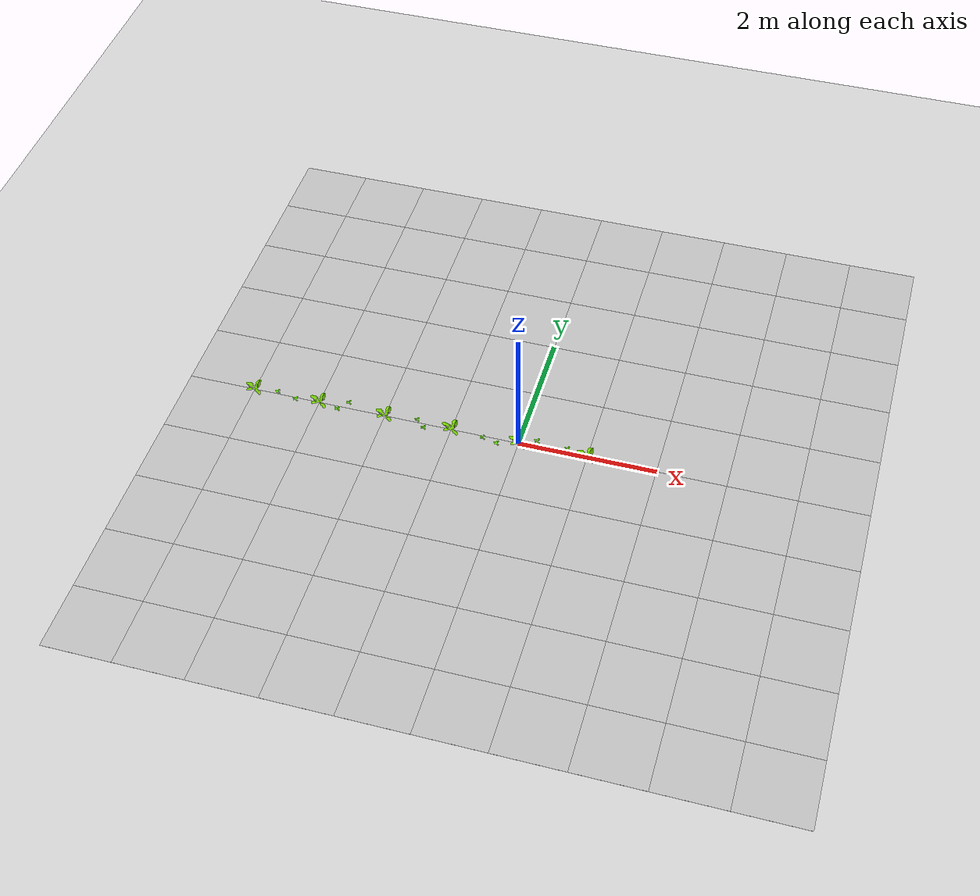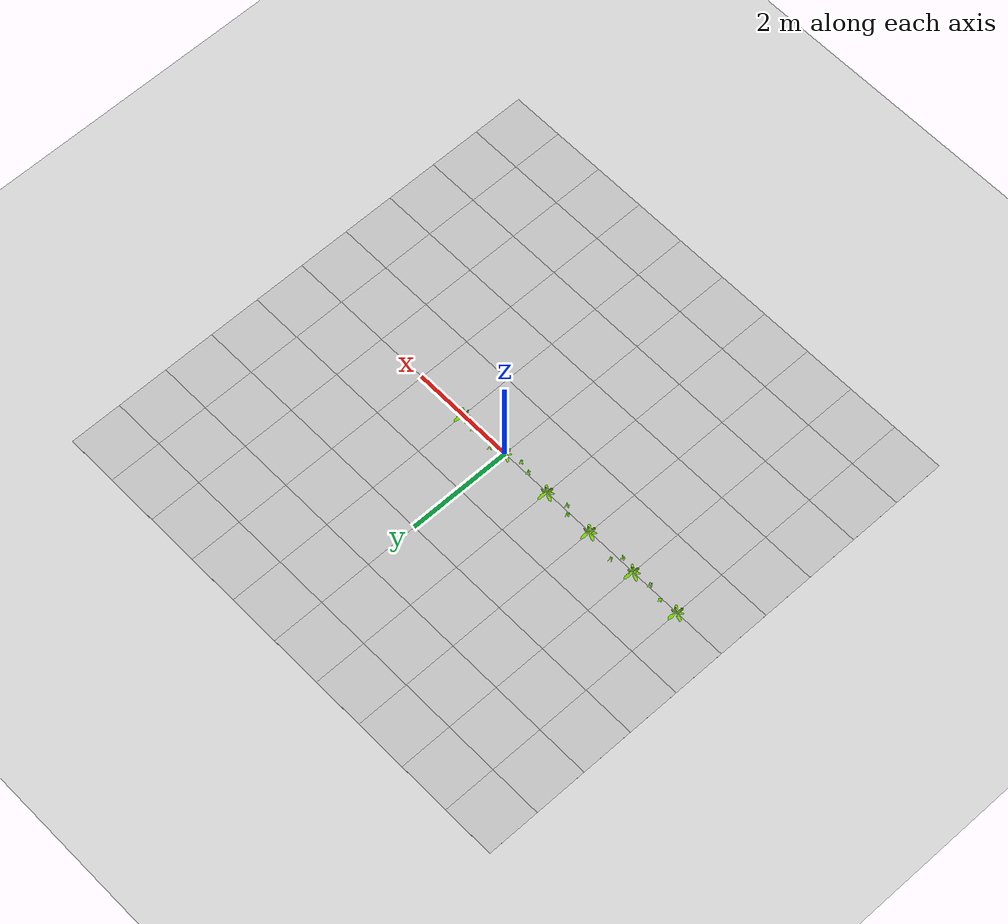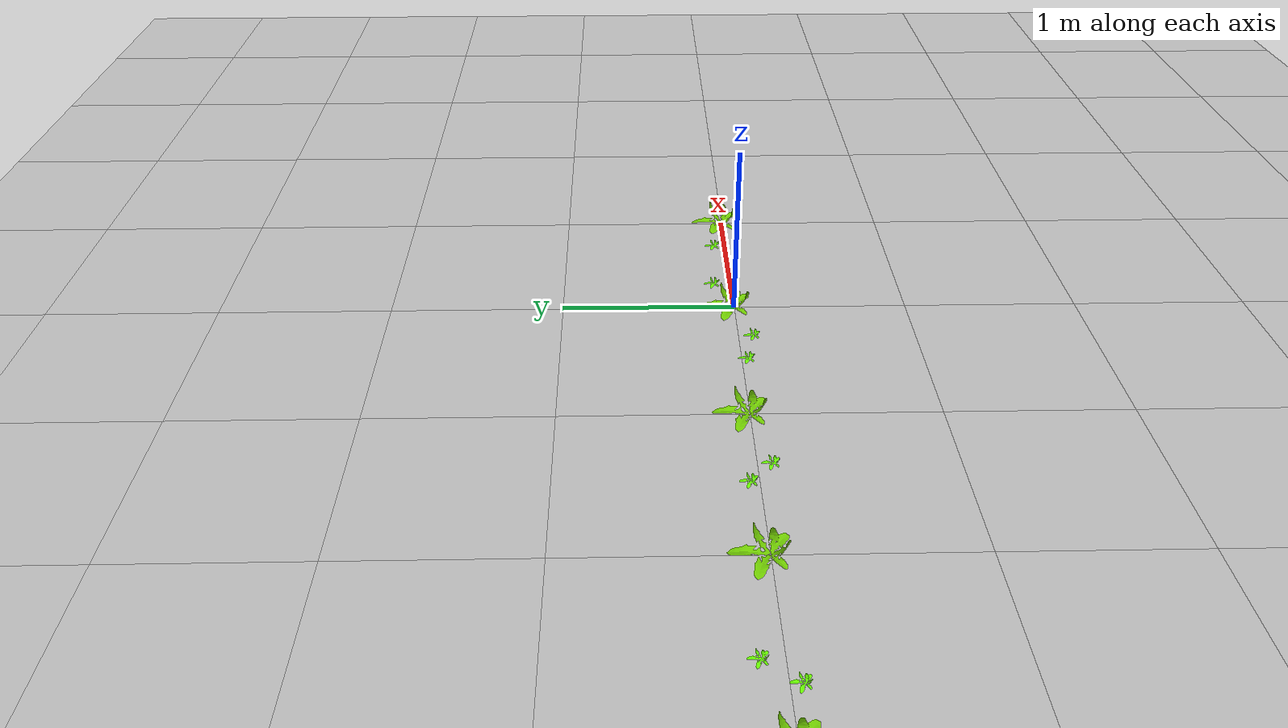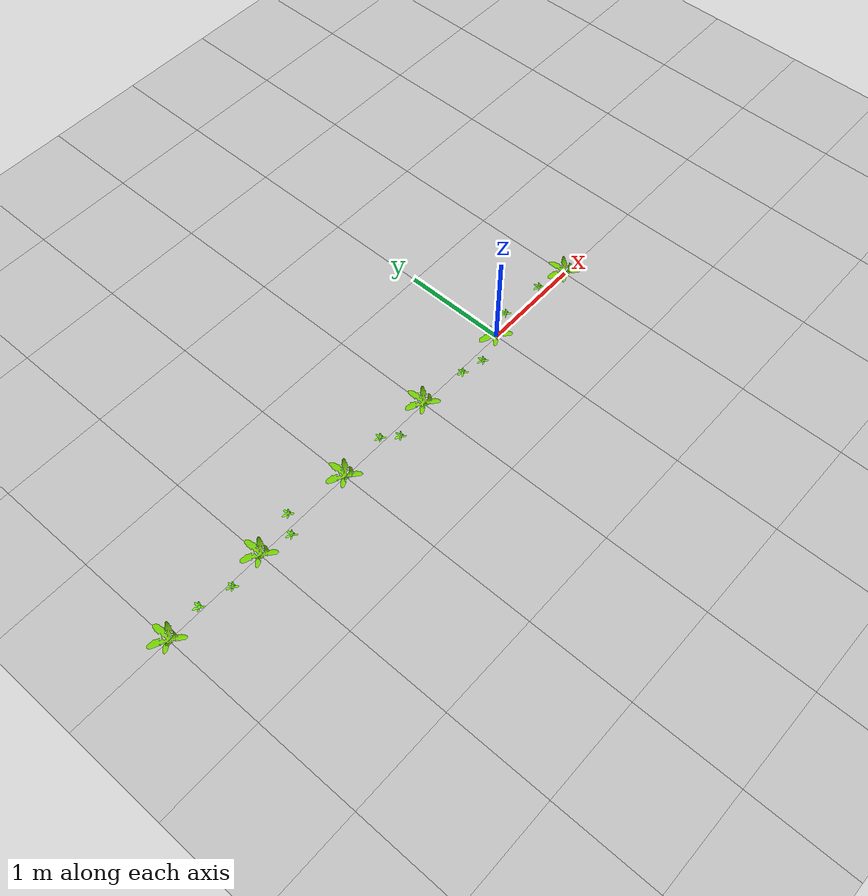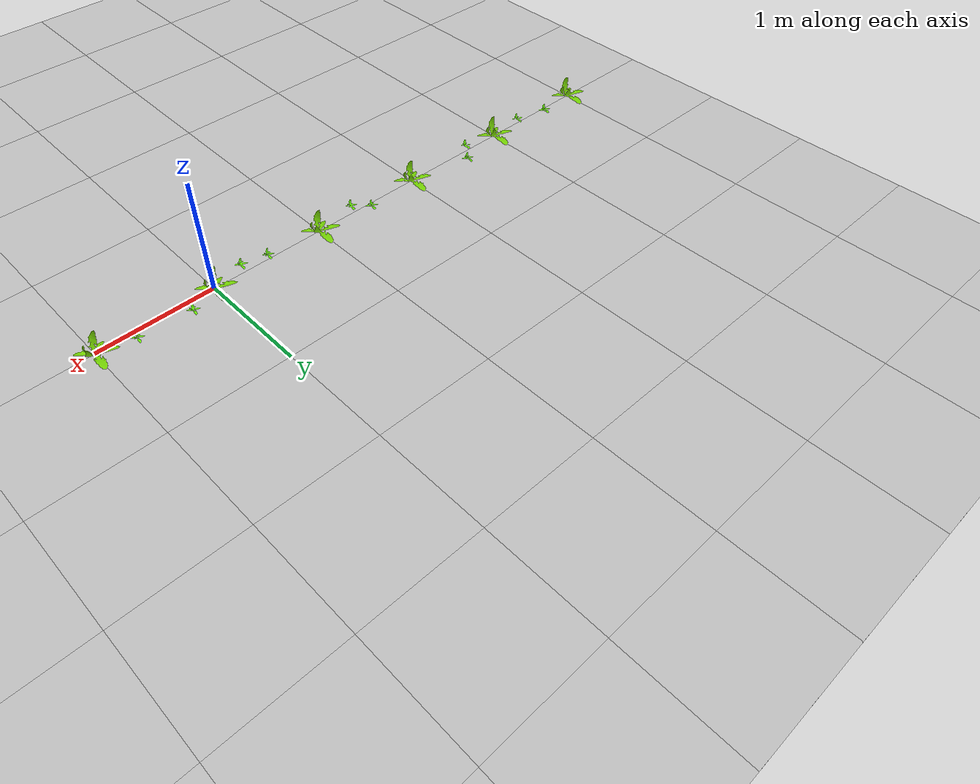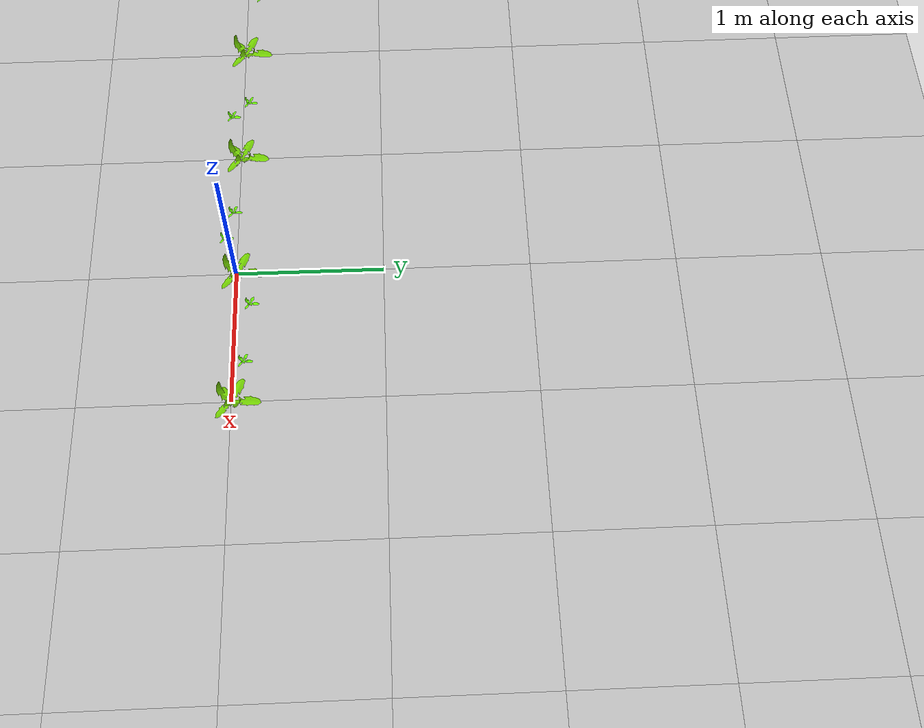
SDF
<?xml version="1.0" ?>

<sdf version="1.6">
  <world name="default">

    <include>
      <uri>model://sun</uri>
    </include>
    <include>
      <uri>model://ground_plane</uri>
    </include>

    <!-- Lighting -->
    <light name='user_point_light_0' type='point'>
      <pose>0.30294 6 2 0 -0 0</pose>
      <diffuse>0.5 0.5 0.5 1</diffuse>
      <specular>0.1 0.1 0.1 1</specular>
      <attenuation>
        <range>20</range>
        <constant>0.6</constant>
        <linear>0.02</linear>
        <quadratic>0.001</quadratic>
      </attenuation>
      <cast_shadows>0</cast_shadows>
      <direction>0 0 0</direction>
    </light>

    <!-- Add point lights to enhance lighting -->
    <light name="point_light_1" type="point">
      <pose>5 5 5 0 0 0</pose>
      <diffuse>1.0 1.0 1.0 1.0</diffuse>
      <specular>0.5 0.5 0.5 1.0</specular>
      <attenuation>
        <range>20</range>
        <constant>0.9</constant>
        <linear>0.01</linear>
        <quadratic>0.001</quadratic>
      </attenuation>
    </light>

    <light name="point_light_2" type="point">
      <pose>-5 5 5 0 0 0</pose>
      <diffuse>1.0 1.0 1.0 1.0</diffuse>
      <specular>0.5 0.5 0.5 1.0</specular>
      <attenuation>
        <range>20</range>
        <constant>0.9</constant>
        <linear>0.01</linear>
        <quadratic>0.001</quadratic>
      </attenuation>
    </light>

    <light name="point_light_3" type="point">
      <pose>5 -5 5 0 0 0</pose>
      <diffuse>1.0 1.0 1.0 1.0</diffuse>
      <specular>0.5 0.5 0.5 1.0</specular>
      <attenuation>
        <range>20</range>
        <constant>0.9</constant>
        <linear>0.01</linear>
        <quadratic>0.001</quadratic>
      </attenuation>
    </light>

    <light name="point_light_4" type="point">
      <pose>-5 -5 5 0 0 0</pose>
      <diffuse>1.0 1.0 1.0 1.0</diffuse>
      <specular>0.5 0.5 0.5 1.0</specular>
      <attenuation>
        <range>20</range>
        <constant>0.9</constant>
        <linear>0.01</linear>
        <quadratic>0.001</quadratic>
      </attenuation>
    </light>

    <!-- Plants -->

    <include>
      <uri>model://plant</uri>
      <name>plant_1</name>
      <pose>-4.0 0 0 0 0 0</pose>
    </include>

    <include>
      <uri>model://plant</uri>
      <name>plant_2</name>
      <pose>-3.0 0 0 0 0 0</pose>
    </include>

    <include>
      <uri>model://plant</uri>
      <name>plant_3</name>
      <pose>-2.0 0 0 0 0 0</pose>
    </include>

    <include>
      <uri>model://plant</uri>
      <name>plant_4</name>
      <pose>-1.0 0 0 0 0 0</pose>
    </include>

    <include>
      <uri>model://plant</uri>
      <name>plant_5</name>
      <pose>0.0 0 0 0 0 0</pose>
    </include>

    <include>
      <uri>model://plant</uri>
      <name>plant_6</name>
      <pose>1.0 0 0 0 0 0</pose>
    </include>

    <!-- Small Plants -->

    <include>
      <uri>model://plant_small</uri>
      <name>plant_small_11</name>
      <pose>-3.65 0.03 0.012213 0 0 0</pose>
    </include>

    <include>
      <uri>model://plant_small</uri>
      <name>plant_small_12</name>
      <pose>-3.35 -0.04 0.012213 0 0 0</pose>
    </include>

    <include>
      <uri>model://plant_small</uri>
      <name>plant_small_21</name>
      <pose>-2.7 -0.06 0.012213 0 0 0</pose>
    </include>

    <include>
      <uri>model://plant_small</uri>
      <name>plant_small_22</name>
      <pose>-2.58 0.1 0.012213 0 0 0</pose>
    </include>

    <include>
      <uri>model://plant_small</uri>
      <name>plant_small_31</name>
      <pose>-1.52 0.04 0.012213 0 0 0</pose>
    </include>

    <include>
      <uri>model://plant_small</uri>
      <name>plant_small_32</name>
      <pose>-1.39 -0.08 0.012213 0 0 0</pose>
    </include>

    <include>
      <uri>model://plant_small</uri>
      <name>plant_small_41</name>
      <pose>-0.52 -0.04 0.012213 0 0 0</pose>
    </include>

    <include>
      <uri>model://plant_small</uri>
      <name>plant_small_42</name>
      <pose>-0.3 -0.09 0.012213 0 0 0</pose>
    </include>

    <include>
      <uri>model://plant_small</uri>
      <name>plant_small_51</name>
      <pose>0.25 0.1 0.012213 0 0 0</pose>
    </include>

    <include>
      <uri>model://plant_small</uri>
      <name>plant_small_52</name>
      <pose>0.7 0.07 0.012213 0 0 0</pose>
    </include>

    <!-- MUD SMALL -->
    <!-- Generate a 10x10 grid of mud_small models -->
    <!-- The grid is centered at (0, 0) -->
    <!-- Each cell in the grid is 1 meter by 1 meter -->
    <!-- The top left is (-4.5, 4.5) and the bottom right is (4.5, -4.5) -->

    <!-- Line 1 -->
    <include>
      <uri>model://mud_small</uri>
      <name>mud_small_1</name>
      <pose>-4.5 4.5 0 0 0 0</pose>
    </include>
    <include>
      <uri>model://mud_small</uri>
      <name>mud_small_2</name>
      <pose>-3.5 4.5 0 0 0 0</pose>
    </include>
    <include>
      <uri>model://mud_small</uri>
      <name>mud_small_3</name>
      <pose>-2.5 4.5 0 0 0 0</pose>
    </include>
    <include>
      <uri>model://mud_small</uri>
      <name>mud_small_4</name>
      <pose>-1.5 4.5 0 0 0 0</pose>
    </include>
    <include>
      <uri>model://mud_small</uri>
      <name>mud_small_5</name>
      <pose>-0.5 4.5 0 0 0 0</pose>
    </include>
    <include>
      <uri>model://mud_small</uri>
      <name>mud_small_6</name>
      <pose>0.5 4.5 0 0 0 0</pose>
    </include>
    <include>
      <uri>model://mud_small</uri>
      <name>mud_small_7</name>
      <pose>1.5 4.5 0 0 0 0</pose>
    </include>
    <include>
      <uri>model://mud_small</uri>
      <name>mud_small_8</name>
      <pose>2.5 4.5 0 0 0 0</pose>
    </include>
    <include>
      <uri>model://mud_small</uri>
      <name>mud_small_9</name>
      <pose>3.5 4.5 0 0 0 0</pose>
    </include>
    <include>
      <uri>model://mud_small</uri>
      <name>mud_small_10</name>
      <pose>4.5 4.5 0 0 0 0</pose>
    </include>

    <!-- Line 2 -->
    <include>
      <uri>model://mud_small</uri>
      <name>mud_small_11</name>
      <pose>-4.5 3.5 0 0 0 0</pose>
    </include>
    <include>
      <uri>model://mud_small</uri>
      <name>mud_small_12</name>
      <pose>-3.5 3.5 0 0 0 0</pose>
    </include>
    <include>
      <uri>model://mud_small</uri>
      <name>mud_small_13</name>
      <pose>-2.5 3.5 0 0 0 0</pose>
    </include>
    <include>
      <uri>model://mud_small</uri>
      <name>mud_small_14</name>
      <pose>-1.5 3.5 0 0 0 0</pose>
    </include>
    <include>
      <uri>model://mud_small</uri>
      <name>mud_small_15</name>
      <pose>-0.5 3.5 0 0 0 0</pose>
    </include>
    <include>
      <uri>model://mud_small</uri>
      <name>mud_small_16</name>
      <pose>0.5 3.5 0 0 0 0</pose>
    </include>
    <include>
      <uri>model://mud_small</uri>
      <name>mud_small_17</name>
      <pose>1.5 3.5 0 0 0 0</pose>
    </include>
    <include>
      <uri>model://mud_small</uri>
      <name>mud_small_18</name>
      <pose>2.5 3.5 0 0 0 0</pose>
    </include>
    <include>
      <uri>model://mud_small</uri>
      <name>mud_small_19</name>
      <pose>3.5 3.5 0 0 0 0</pose>
    </include>
    <include>
      <uri>model://mud_small</uri>
      <name>mud_small_20</name>
      <pose>4.5 3.5 0 0 0 0</pose>
    </include>

    <!-- Line 3 -->
    <include>
      <uri>model://mud_small</uri>
      <name>mud_small_21</name>
      <pose>-4.5 2.5 0 0 0 0</pose>
    </include>
    <include>
      <uri>model://mud_small</uri>
      <name>mud_small_22</name>
      <pose>-3.5 2.5 0 0 0 0</pose>
    </include>
    <include>
      <uri>model://mud_small</uri>
      <name>mud_small_23</name>
      <pose>-2.5 2.5 0 0 0 0</pose>
    </include>
    <include>
      <uri>model://mud_small</uri>
      <name>mud_small_24</name>
      <pose>-1.5 2.5 0 0 0 0</pose>
    </include>
    <include>
      <uri>model://mud_small</uri>
      <name>mud_small_25</name>
      <pose>-0.5 2.5 0 0 0 0</pose>
    </include>
    <include>
      <uri>model://mud_small</uri>
      <name>mud_small_26</name>
      <pose>0.5 2.5 0 0 0 0</pose>
    </include>
    <include>
      <uri>model://mud_small</uri>
      <name>mud_small_27</name>
      <pose>1.5 2.5 0 0 0 0</pose>
    </include>
    <include>
      <uri>model://mud_small</uri>
      <name>mud_small_28</name>
      <pose>2.5 2.5 0 0 0 0</pose>
    </include>
    <include>
      <uri>model://mud_small</uri>
      <name>mud_small_29</name>
      <pose>3.5 2.5 0 0 0 0</pose>
    </include>
    <include>
      <uri>model://mud_small</uri>
      <name>mud_small_30</name>
      <pose>4.5 2.5 0 0 0 0</pose>
    </include>

    <!-- Line 4 -->
    <include>
      <uri>model://mud_small</uri>
      <name>mud_small_31</name>
      <pose>-4.5 1.5 0 0 0 0</pose>
    </include>
    <include>
      <uri>model://mud_small</uri>
      <name>mud_small_32</name>
      <pose>-3.5 1.5 0 0 0 0</pose>
    </include>
    <include>
      <uri>model://mud_small</uri>
      <name>mud_small_33</name>
      <pose>-2.5 1.5 0 0 0 0</pose>
    </include>
    <include>
      <uri>model://mud_small</uri>
      <name>mud_small_34</name>
      <pose>-1.5 1.5 0 0 0 0</pose>
    </include>
    <include>
      <uri>model://mud_small</uri>
      <name>mud_small_35</name>
      <pose>-0.5 1.5 0 0 0 0</pose>
    </include>
    <include>
      <uri>model://mud_small</uri>
      <name>mud_small_36</name>
      <pose>0.5 1.5 0 0 0 0</pose>
    </include>
    <include>
      <uri>model://mud_small</uri>
      <name>mud_small_37</name>
      <pose>1.5 1.5 0 0 0 0</pose>
    </include>
    <include>
      <uri>model://mud_small</uri>
      <name>mud_small_38</name>
      <pose>2.5 1.5 0 0 0 0</pose>
    </include>
    <include>
      <uri>model://mud_small</uri>
      <name>mud_small_39</name>
      <pose>3.5 1.5 0 0 0 0</pose>
    </include>
    <include>
      <uri>model://mud_small</uri>
      <name>mud_small_40</name>
      <pose>4.5 1.5 0 0 0 0</pose>
    </include>

    <!-- Line 5 -->
    <include>
      <uri>model://mud_small</uri>
      <name>mud_small_41</name>
      <pose>-4.5 0.5 0 0 0 0</pose>
    </include>
    <include>
      <uri>model://mud_small</uri>
      <name>mud_small_42</name>
      <pose>-3.5 0.5 0 0 0 0</pose>
    </include>
    <include>
      <uri>model://mud_small</uri>
      <name>mud_small_43</name>
      <pose>-2.5 0.5 0 0 0 0</pose>
    </include>
    <include>
      <uri>model://mud_small</uri>
      <name>mud_small_44</name>
      <pose>-1.5 0.5 0 0 0 0</pose>
    </include>
    <include>
      <uri>model://mud_small</uri>
      <name>mud_small_45</name>
      <pose>-0.5 0.5 0 0 0 0</pose>
    </include>
    <include>
      <uri>model://mud_small</uri>
      <name>mud_small_46</name>
      <pose>0.5 0.5 0 0 0 0</pose>
    </include>
    <include>
      <uri>model://mud_small</uri>
      <name>mud_small_47</name>
      <pose>1.5 0.5 0 0 0 0</pose>
    </include>
    <include>
      <uri>model://mud_small</uri>
      <name>mud_small_48</name>
      <pose>2.5 0.5 0 0 0 0</pose>
    </include>
    <include>
      <uri>model://mud_small</uri>
      <name>mud_small_49</name>
      <pose>3.5 0.5 0 0 0 0</pose>
    </include>
    <include>
      <uri>model://mud_small</uri>
      <name>mud_small_50</name>
      <pose>4.5 0.5 0 0 0 0</pose>
    </include>

    <!-- Line 6 -->
    <include>
      <uri>model://mud_small</uri>
      <name>mud_small_51</name>
      <pose>-4.5 -0.5 0 0 0 0</pose>
    </include>
    <include>
      <uri>model://mud_small</uri>
      <name>mud_small_52</name>
      <pose>-3.5 -0.5 0 0 0 0</pose>
    </include>
    <include>
      <uri>model://mud_small</uri>
      <name>mud_small_53</name>
      <pose>-2.5 -0.5 0 0 0 0</pose>
    </include>
    <include>
      <uri>model://mud_small</uri>
      <name>mud_small_54</name>
      <pose>-1.5 -0.5 0 0 0 0</pose>
    </include>
    <include>
      <uri>model://mud_small</uri>
      <name>mud_small_55</name>
      <pose>-0.5 -0.5 0 0 0 0</pose>
    </include>
    <include>
      <uri>model://mud_small</uri>
      <name>mud_small_56</name>
      <pose>0.5 -0.5 0 0 0 0</pose>
    </include>
    <include>
      <uri>model://mud_small</uri>
      <name>mud_small_57</name>
      <pose>1.5 -0.5 0 0 0 0</pose>
    </include>
    <include>
      <uri>model://mud_small</uri>
      <name>mud_small_58</name>
      <pose>2.5 -0.5 0 0 0 0</pose>
    </include>
    <include>
      <uri>model://mud_small</uri>
      <name>mud_small_59</name>
      <pose>3.5 -0.5 0 0 0 0</pose>
    </include>
    <include>
      <uri>model://mud_small</uri>
      <name>mud_small_60</name>
      <pose>4.5 -0.5 0 0 0 0</pose>
    </include>

    <!-- Line 7 -->
    <include>
      <uri>model://mud_small</uri>
      <name>mud_small_61</name>
      <pose>-4.5 -1.5 0 0 0 0</pose>
    </include>
    <include>
      <uri>model://mud_small</uri>
      <name>mud_small_62</name>
      <pose>-3.5 -1.5 0 0 0 0</pose>
    </include>
    <include>
      <uri>model://mud_small</uri>
      <name>mud_small_63</name>
      <pose>-2.5 -1.5 0 0 0 0</pose>
    </include>
    <include>
      <uri>model://mud_small</uri>
      <name>mud_small_64</name>
      <pose>-1.5 -1.5 0 0 0 0</pose>
    </include>
    <include>
      <uri>model://mud_small</uri>
      <name>mud_small_65</name>
      <pose>-0.5 -1.5 0 0 0 0</pose>
    </include>
    <include>
      <uri>model://mud_small</uri>
      <name>mud_small_66</name>
      <pose>0.5 -1.5 0 0 0 0</pose>
    </include>
    <include>
      <uri>model://mud_small</uri>
      <name>mud_small_67</name>
      <pose>1.5 -1.5 0 0 0 0</pose>
    </include>
    <include>
      <uri>model://mud_small</uri>
      <name>mud_small_68</name>
      <pose>2.5 -1.5 0 0 0 0</pose>
    </include>
    <include>
      <uri>model://mud_small</uri>
      <name>mud_small_69</name>
      <pose>3.5 -1.5 0 0 0 0</pose>
    </include>
    <include>
      <uri>model://mud_small</uri>
      <name>mud_small_70</name>
      <pose>4.5 -1.5 0 0 0 0</pose>
    </include>

    <!-- Line 8 -->
    <include>
      <uri>model://mud_small</uri>
      <name>mud_small_71</name>
      <pose>-4.5 -2.5 0 0 0 0</pose>
    </include>
    <include>
      <uri>model://mud_small</uri>
      <name>mud_small_72</name>
      <pose>-3.5 -2.5 0 0 0 0</pose>
    </include>
    <include>
      <uri>model://mud_small</uri>
      <name>mud_small_73</name>
      <pose>-2.5 -2.5 0 0 0 0</pose>
    </include>
    <include>
      <uri>model://mud_small</uri>
      <name>mud_small_74</name>
      <pose>-1.5 -2.5 0 0 0 0</pose>
    </include>
    <include>
      <uri>model://mud_small</uri>
      <name>mud_small_75</name>
      <pose>-0.5 -2.5 0 0 0 0</pose>
    </include>
    <include>
      <uri>model://mud_small</uri>
      <name>mud_small_76</name>
      <pose>0.5 -2.5 0 0 0 0</pose>
    </include>
    <include>
      <uri>model://mud_small</uri>
      <name>mud_small_77</name>
      <pose>1.5 -2.5 0 0 0 0</pose>
    </include>
    <include>
      <uri>model://mud_small</uri>
      <name>mud_small_78</name>
      <pose>2.5 -2.5 0 0 0 0</pose>
    </include>
    <include>
      <uri>model://mud_small</uri>
      <name>mud_small_79</name>
      <pose>3.5 -2.5 0 0 0 0</pose>
    </include>
    <include>
      <uri>model://mud_small</uri>
      <name>mud_small_80</name>
      <pose>4.5 -2.5 0 0 0 0</pose>
    </include>

    <!-- Line 9 -->
    <include>
      <uri>model://mud_small</uri>
      <name>mud_small_81</name>
      <pose>-4.5 -3.5 0 0 0 0</pose>
    </include>
    <include>
      <uri>model://mud_small</uri>
      <name>mud_small_82</name>
      <pose>-3.5 -3.5 0 0 0 0</pose>
    </include>
    <include>
      <uri>model://mud_small</uri>
      <name>mud_small_83</name>
      <pose>-2.5 -3.5 0 0 0 0</pose>
    </include>
    <include>
      <uri>model://mud_small</uri>
      <name>mud_small_84</name>
      <pose>-1.5 -3.5 0 0 0 0</pose>
    </include>
    <include>
      <uri>model://mud_small</uri>
      <name>mud_small_85</name>
      <pose>-0.5 -3.5 0 0 0 0</pose>
    </include>
    <include>
      <uri>model://mud_small</uri>
      <name>mud_small_86</name>
      <pose>0.5 -3.5 0 0 0 0</pose>
    </include>
    <include>
      <uri>model://mud_small</uri>
      <name>mud_small_87</name>
      <pose>1.5 -3.5 0 0 0 0</pose>
    </include>
    <include>
      <uri>model://mud_small</uri>
      <name>mud_small_88</name>
      <pose>2.5 -3.5 0 0 0 0</pose>
    </include>
    <include>
      <uri>model://mud_small</uri>
      <name>mud_small_89</name>
      <pose>3.5 -3.5 0 0 0 0</pose>
    </include>
    <include>
      <uri>model://mud_small</uri>
      <name>mud_small_90</name>
      <pose>4.5 -3.5 0 0 0 0</pose>
    </include>

    <!-- Line 10 -->
    <include>
      <uri>model://mud_small</uri>
      <name>mud_small_91</name>
      <pose>-4.5 -4.5 0 0 0 0</pose>
    </include>
    <include>
      <uri>model://mud_small</uri>
      <name>mud_small_92</name>
      <pose>-3.5 -4.5 0 0 0 0</pose>
    </include>
    <include>
      <uri>model://mud_small</uri>
      <name>mud_small_93</name>
      <pose>-2.5 -4.5 0 0 0 0</pose>
    </include>
    <include>
      <uri>model://mud_small</uri>
      <name>mud_small_94</name>
      <pose>-1.5 -4.5 0 0 0 0</pose>
    </include>
    <include>
      <uri>model://mud_small</uri>
      <name>mud_small_95</name>
      <pose>-0.5 -4.5 0 0 0 0</pose>
    </include>
    <include>
      <uri>model://mud_small</uri>
      <name>mud_small_96</name>
      <pose>0.5 -4.5 0 0 0 0</pose>
    </include>
    <include>
      <uri>model://mud_small</uri>
      <name>mud_small_97</name>
      <pose>1.5 -4.5 0 0 0 0</pose>
    </include>
    <include>
      <uri>model://mud_small</uri>
      <name>mud_small_98</name>
      <pose>2.5 -4.5 0 0 0 0</pose>
    </include>
    <include>
      <uri>model://mud_small</uri>
      <name>mud_small_99</name>
      <pose>3.5 -4.5 0 0 0 0</pose>
    </include>
    <include>
      <uri>model://mud_small</uri>
      <name>mud_small_100</name>
      <pose>4.5 -4.5 0 0 0 0</pose>
    </include>

    <!-- MUD SMALL -->
  </world>
</sdf>

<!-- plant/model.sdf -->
<sdf version='1.6'>
  <model name='plant'>
    <link name='link_1'>
      <visual name='visual'>
        <pose frame=''>0 0 0 0 0 0</pose>
        <geometry>
          <mesh>
            <uri>model://plant/meshes/plant.dae</uri>
            <scale>1.0 1.0 1.0</scale>
          </mesh>
        </geometry>
        <cast_shadows>0</cast_shadows>
        <transparency>0</transparency>
      </visual>

    </link>

    <static>1</static>
    <allow_auto_disable>1</allow_auto_disable>
  </model>
</sdf>

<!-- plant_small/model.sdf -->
<sdf version='1.6'>
  <model name='plant_small'>
    <link name='link_1'>
      <visual name='visual'>
        <pose frame=''>0 0 0 0 0 0</pose>
        <geometry>
          <mesh>
            <uri>model://plant_small/meshes/plant_small.dae</uri>
            <scale>1.0 1.0 1.0</scale>
          </mesh>
        </geometry>
        <cast_shadows>0</cast_shadows>
        <transparency>0</transparency>
      </visual>

    </link>

    <static>1</static>
    <allow_auto_disable>1</allow_auto_disable>
  </model>
</sdf>

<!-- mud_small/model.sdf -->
<sdf version='1.6'>
  <model name='mud_small'>
    <link name='link_1'>
      <visual name='visual'>
        <pose frame=''>0 0 0 0 0 0</pose>
        <geometry>
          <mesh>
            <uri>model://mud_small/meshes/mud_small.dae</uri>
            <scale>1.0 1.0 1.0</scale>
          </mesh>
        </geometry>
        <cast_shadows>0</cast_shadows>
        <transparency>0</transparency>
      </visual>

    </link>

    <static>1</static>
    <allow_auto_disable>1</allow_auto_disable>
  </model>
</sdf>
